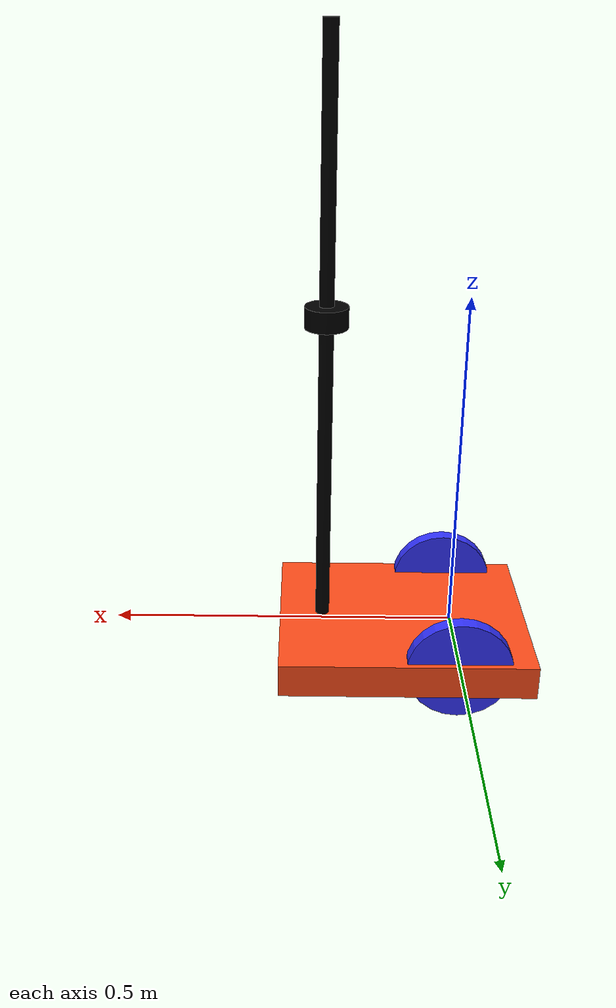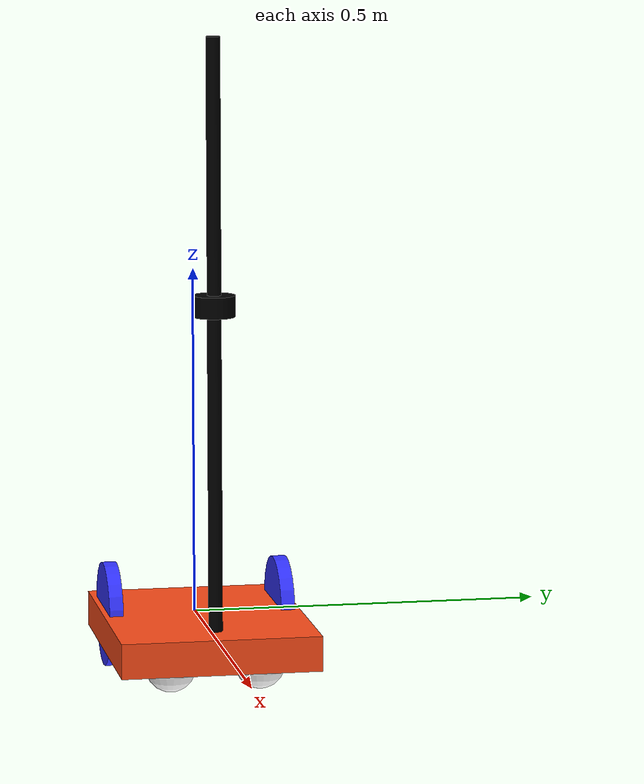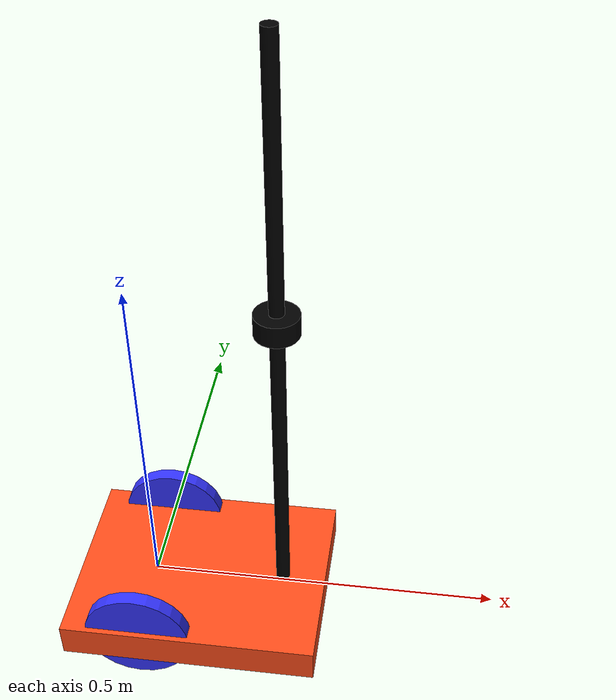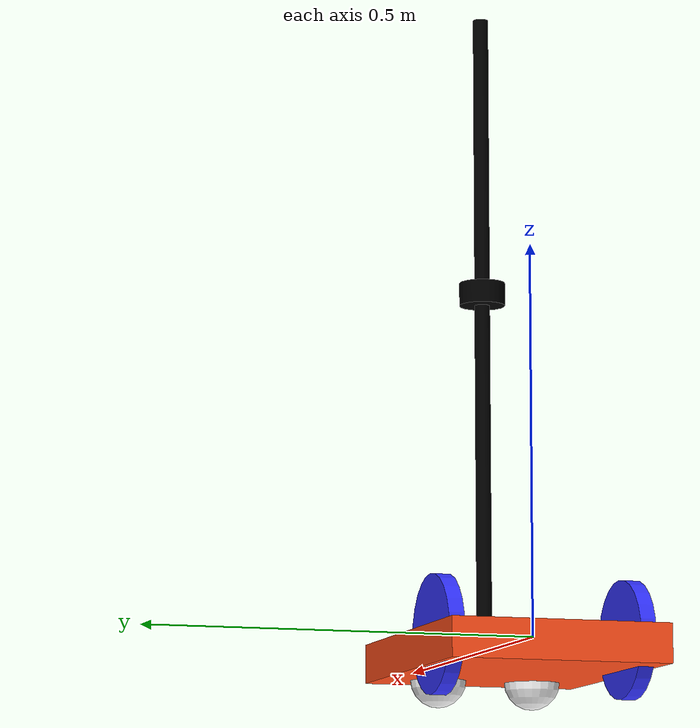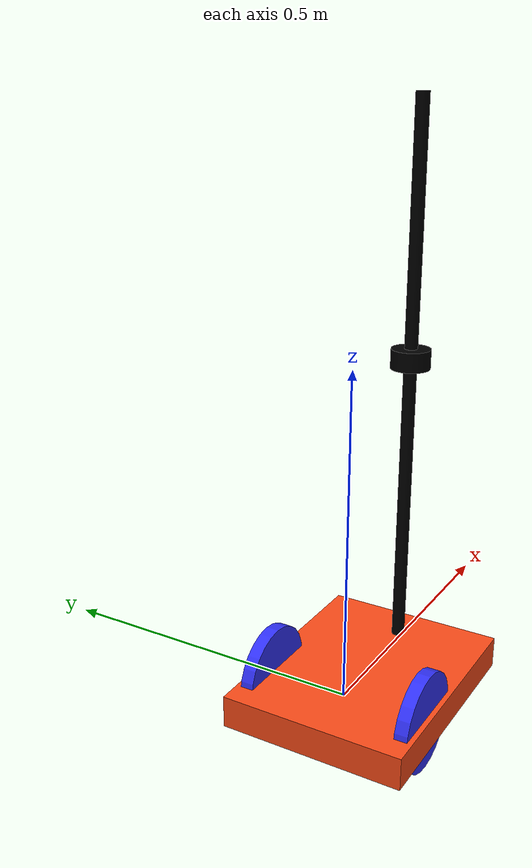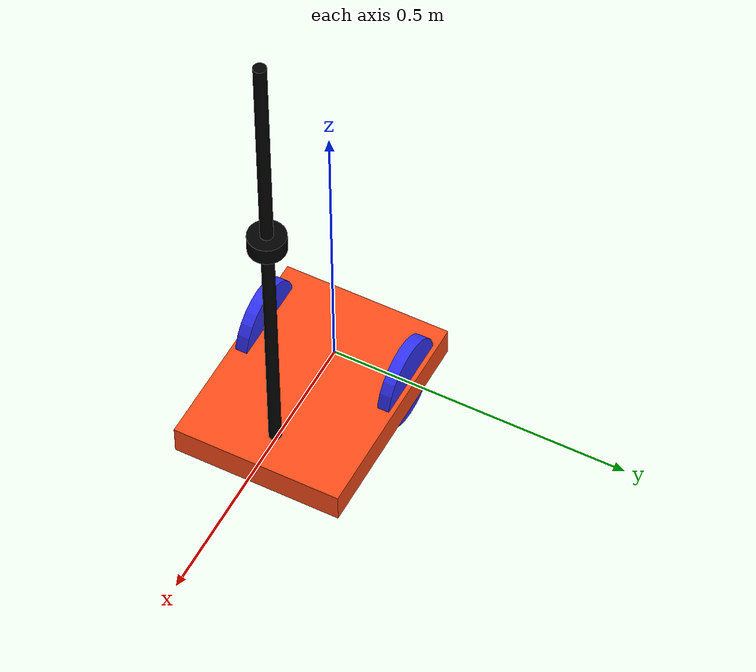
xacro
<?xml version="1.0"?>
<robot xmlns:xacro="http://www.ros.org/wiki/xacro"  name="robot">

    <xacro:arg name="use_ros2_control" default="true"/>
    <xacro:arg name="sim_mode" default="false"/>

    <xacro:include filename="robot_core.xacro" />

    <xacro:if value="$(arg use_ros2_control)">
        <xacro:include filename="ros2_control.xacro" />
    </xacro:if>
    <xacro:unless value="$(arg use_ros2_control)">
        <xacro:include filename="gazebo_control.xacro" />
    </xacro:unless>
    <xacro:include filename="lidar.xacro" />

</robot>

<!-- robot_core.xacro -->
<robot xmlns:xacro="http://www.ros.org/wiki/xacro" >

    <xacro:include filename="inertial_macros.xacro"/>

    <!-- Updated properties -->
    <xacro:property name="chassis_length" value="0.364"/>
    <xacro:property name="chassis_width" value="0.284"/>
    <xacro:property name="chassis_height" value="0.05"/>
    <xacro:property name="chassis_mass" value="4.0"/>

    <xacro:property name="wheel_radius" value="0.075"/>
    <xacro:property name="wheel_thickness" value="0.02"/>
    <xacro:property name="wheel_mass" value="0.1"/>
    <xacro:property name="wheel_offset_x" value="0"/>
    <xacro:property name="wheel_offset_y" value="0.12426"/>
    <xacro:property name="wheel_offset_z" value="0"/>

    <xacro:property name="caster_wheel_radius" value="0.036"/>
    <xacro:property name="caster_wheel_mass" value="0.1"/>
    <xacro:property name="caster_wheel_offset_x" value="0.2985"/>
    <xacro:property name="caster_wheel_offset_z" value="0.001"/>

    <!-- Materials -->
    <material name="white">
        <color rgba="1 1 1 1" />
    </material>
    <material name="orange">
        <color rgba="1 0.3 0.1 1"/>
    </material>
    <material name="blue">
        <color rgba="0.2 0.2 1 1"/>
    </material>
    <material name="black">
        <color rgba="0 0 0 1"/>
    </material>
    <material name="red">
        <color rgba="1 0 0 1"/>
    </material>

    <!-- BASE LINK -->
    <link name="base_link"/>

    <!-- BASE_FOOTPRINT LINK -->
    <joint name="base_footprint_joint" type="fixed">
        <parent link="base_link"/>
        <child link="base_footprint"/>
        <origin xyz="0 0 0" rpy="0 0 0"/>
    </joint>
    <link name="base_footprint"/>

    <!-- CHASSIS LINK -->
    <joint name="chassis_joint" type="fixed">
        <parent link="base_link"/>
        <child link="chassis"/>
        <origin xyz="-0.1095 0 -0.039"/>
    </joint>

    <link name="chassis">
        <visual>
            <origin xyz="${chassis_length/2} 0 ${chassis_height/2}"/>
            <geometry>
                <box size="${chassis_length} ${chassis_width} ${chassis_height}"/>
            </geometry>
            <material name="orange"/>
        </visual>
        <collision>
            <origin xyz="${chassis_length/2} 0 ${chassis_height/2}"/>
            <geometry>
                <box size="${chassis_length} ${chassis_width} ${chassis_height}"/>
            </geometry>
        </collision>
        <xacro:inertial_box mass="${chassis_mass}" x="${chassis_length}" y="${chassis_width}" z="${chassis_height}">
            <origin xyz="${chassis_length/2} 0 ${chassis_height/2}" rpy="0 0 0"/>
        </xacro:inertial_box>
    </link>

    <gazebo reference="chassis">
        <material>Gazebo/Orange</material>
    </gazebo>

    <!-- LEFT WHEEL JOINT -->
    <joint name="left_wheel_joint" type="continuous">
        <parent link="base_link"/>
        <child link="left_wheel"/>
        <origin xyz="0 ${wheel_offset_y} ${-wheel_offset_z}" rpy="-${pi/2} 0 0" />
        <axis xyz="0 0 1"/>
    </joint>

    <link name="left_wheel">
        <visual>
            <geometry>
                <cylinder radius="${wheel_radius}" length="${wheel_thickness}"/>
            </geometry>
            <material name="blue"/>
        </visual>
        <collision>
            <geometry>
                <sphere radius="${wheel_radius}"/>
            </geometry>
        </collision>
        <xacro:inertial_cylinder mass="${wheel_mass}" length="${wheel_thickness}" radius="${wheel_radius}">
            <origin xyz="0 0 0" rpy="0 0 0"/>
        </xacro:inertial_cylinder>
    </link>

	<gazebo reference="left_wheel">
	    <material>Gazebo/Blue</material>
	    <mu1>20</mu1>
	    <mu2>20</mu2>
	    <damping>0.5</damping>
	</gazebo>

    <!-- RIGHT WHEEL JOINT -->
    <joint name="right_wheel_joint" type="continuous">
        <parent link="base_link"/>
        <child link="right_wheel"/>
        <origin xyz="0 ${-wheel_offset_y} ${-wheel_offset_z}" rpy="${pi/2} 0 0" />
        <axis xyz="0 0 -1"/>
    </joint>

    <link name="right_wheel">
        <visual>
            <geometry>
                <cylinder radius="${wheel_radius}" length="${wheel_thickness}"/>
            </geometry>
            <material name="blue"/>
        </visual>
        <collision>
            <geometry>
                <sphere radius="${wheel_radius}"/>
            </geometry>
        </collision>
        <xacro:inertial_cylinder mass="${wheel_mass}" length="${wheel_thickness}" radius="${wheel_radius}">
            <origin xyz="0 0 0" rpy="0 0 0"/>
        </xacro:inertial_cylinder>
    </link>

        <gazebo reference="right_wheel">
	    <material>Gazebo/Blue</material>
	    <mu1>20</mu1>
	    <mu2>20</mu2>
	    <damping>0.5</damping>
	</gazebo>

    <!-- CASTER WHEEL LEFT -->
    <joint name="caster_wheel_left_joint" type="fixed">
        <parent link="chassis"/>
        <child link="caster_wheel_left"/>
        <origin xyz="${caster_wheel_offset_x} 0.06375 ${caster_wheel_offset_z}"/>
    </joint>

    <link name="caster_wheel_left">
        <visual>
            <geometry>
                <sphere radius="${caster_wheel_radius}"/>
            </geometry>
            <material name="white"/>
        </visual>
        <collision>
            <geometry>
                <sphere radius="${caster_wheel_radius}"/>
            </geometry>
        </collision>
        <xacro:inertial_sphere mass="${caster_wheel_mass}" radius="${caster_wheel_radius}">
            <origin xyz="0 0 0" rpy="0 0 0"/>
        </xacro:inertial_sphere>
    </link>

    <gazebo reference="caster_wheel_left">
        <material>Gazebo/White</material>
        <mu1 value="0.001"/>
        <mu2 value="0.001"/>
    </gazebo>

    <!-- CASTER WHEEL RIGHT -->
    <joint name="caster_wheel_right_joint" type="fixed">
        <parent link="chassis"/>
        <child link="caster_wheel_right"/>
        <origin xyz="${caster_wheel_offset_x} -0.06375 ${caster_wheel_offset_z}"/>
    </joint>

    <link name="caster_wheel_right">
        <visual>
            <geometry>
                <sphere radius="${caster_wheel_radius}"/>
            </geometry>
            <material name="white"/>
        </visual>
        <collision>
            <geometry>
                <sphere radius="${caster_wheel_radius}"/>
            </geometry>
        </collision>
        <xacro:inertial_sphere mass="${caster_wheel_mass}" radius="${caster_wheel_radius}">
            <origin xyz="0 0 0" rpy="0 0 0"/>
        </xacro:inertial_sphere>
    </link>

    <gazebo reference="caster_wheel_right">
        <material>Gazebo/White</material>
        <mu1 value="0.001"/>
        <mu2 value="0.001"/>
    </gazebo>

</robot>

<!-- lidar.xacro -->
<robot xmlns:xacro="http://www.ros.org/wiki/xacro" >

    <joint name="laser_joint" type="fixed">
        <parent link="chassis"/>
        <child link="laser_frame"/>
        <origin xyz="0.301 0 0.512" rpy="0 0 0"/>
    </joint>

    <link name="laser_frame">
        <visual>
            <geometry>
                <cylinder radius="0.03" length="0.03"/>
            </geometry>
            <material name="black"/>
        </visual>
        <visual>
            <origin xyz="0 0 -0.05"/>
            <geometry>
                <cylinder radius="0.01" length="0.85"/>
            </geometry>
            <material name="black"/>
        </visual>
        <collision>
            <geometry>
                <cylinder radius="0.03" length="0.5"/>
            </geometry>
        </collision>
        <xacro:inertial_cylinder mass="0.1" length="0.04" radius="0.05">
            <origin xyz="0 0 0" rpy="0 0 0"/>
        </xacro:inertial_cylinder>
    </link>

    <gazebo reference="laser_frame">
        <material>Gazebo/Black</material>

        <sensor name="laser" type="gpu_lidar">
            <pose> 0 0 0 0 0 0 </pose>
            <visualize>false</visualize>
            <update_rate>10</update_rate>
            <lidar>
                <scan>
                    <horizontal>
                        <samples>360</samples>
                        <min_angle>-3.14</min_angle>
                        <max_angle>3.14</max_angle>
                    </horizontal>
                </scan>
                <range>
                    <min>0.3</min>
                    <max>12</max>
                </range>
            </lidar>
            <topic>scan</topic>
            <gz_frame_id>laser_frame</gz_frame_id>
        </sensor>
    </gazebo>

</robot>
